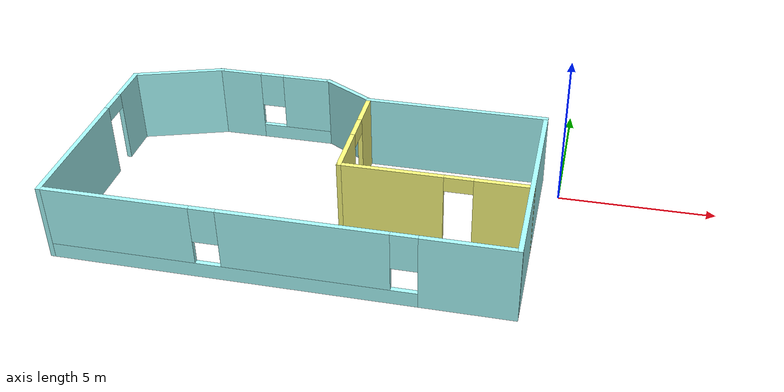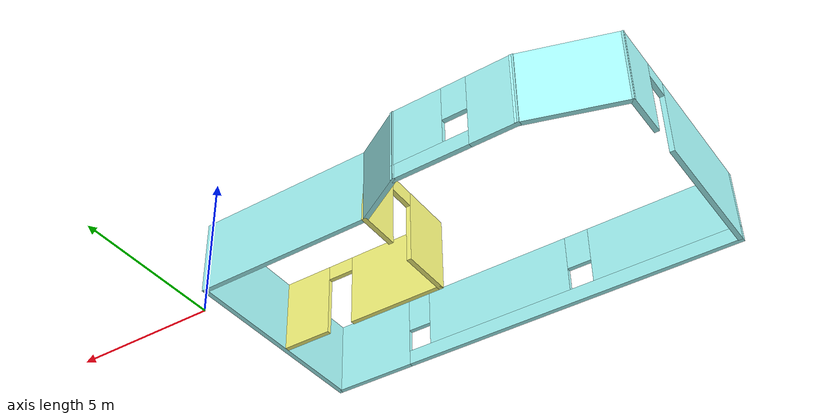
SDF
<?xml version='1.0'?>
<sdf version='1.6'>
  <model name='building'>
    <pose frame=''>-7.72942 -2.19141 0 0 -0 0</pose>
    <link name='Wall_0'>
      <pose frame=''>-2.31727 3.87377 0 0 -0 0</pose>
      <visual name='Wall_0_Visual_0'>
        <pose frame=''>-1.24884 0 1.25 0 -0 0</pose>
        <geometry>
          <box>
            <size>1.50232 0.15 2.5</size>
          </box>
        </geometry>
        <material>
          <script>
            <uri>file://media/materials/scripts/gazebo.material</uri>
            <name>Gazebo/Grey</name>
          </script>
          <ambient>0.666667 1 1 1</ambient>
        </material>
        <meta>
          <layer>0</layer>
        </meta>
      </visual>
      <collision name='Wall_0_Collision_0'>
        <geometry>
          <box>
            <size>1.50232 0.15 2.5</size>
          </box>
        </geometry>
        <pose frame=''>-1.24884 0 1.25 0 -0 0</pose>
      </collision>
      <visual name='Wall_0_Visual_1'>
        <pose frame=''>0.751159 0 0.25 0 -0 0</pose>
        <geometry>
          <box>
            <size>2.49768 0.15 0.5</size>
          </box>
        </geometry>
        <material>
          <script>
            <uri>file://media/materials/scripts/gazebo.material</uri>
            <name>Gazebo/Grey</name>
          </script>
          <ambient>0.666667 1 1 1</ambient>
        </material>
        <meta>
          <layer>0</layer>
        </meta>
      </visual>
      <collision name='Wall_0_Collision_1'>
        <geometry>
          <box>
            <size>2.49768 0.15 0.5</size>
          </box>
        </geometry>
        <pose frame=''>0.751159 0 0.25 0 -0 0</pose>
      </collision>
      <visual name='Wall_0_Visual_2'>
        <pose frame=''>1.15116 0 1.5 0 -0 0</pose>
        <geometry>
          <box>
            <size>1.69768 0.15 2</size>
          </box>
        </geometry>
        <material>
          <script>
            <uri>file://media/materials/scripts/gazebo.material</uri>
            <name>Gazebo/Grey</name>
          </script>
          <ambient>0.666667 1 1 1</ambient>
        </material>
        <meta>
          <layer>0</layer>
        </meta>
      </visual>
      <collision name='Wall_0_Collision_2'>
        <geometry>
          <box>
            <size>1.69768 0.15 2</size>
          </box>
        </geometry>
        <pose frame=''>1.15116 0 1.5 0 -0 0</pose>
      </collision>
      <visual name='Wall_0_Visual_3'>
        <pose frame=''>-0.097682 0 1.9 0 -0 0</pose>
        <geometry>
          <box>
            <size>0.8 0.15 1.2</size>
          </box>
        </geometry>
        <material>
          <script>
            <uri>file://media/materials/scripts/gazebo.material</uri>
            <name>Gazebo/Grey</name>
          </script>
          <ambient>0.666667 1 1 1</ambient>
        </material>
        <meta>
          <layer>0</layer>
        </meta>
      </visual>
      <collision name='Wall_0_Collision_3'>
        <geometry>
          <box>
            <size>0.8 0.15 1.2</size>
          </box>
        </geometry>
        <pose frame=''>-0.097682 0 1.9 0 -0 0</pose>
      </collision>
    </link>
    <link name='Wall_1'>
      <collision name='Wall_1_Collision'>
        <geometry>
          <box>
            <size>2 0.15 2.5</size>
          </box>
        </geometry>
        <pose frame=''>0 0 1.25 0 -0 0</pose>
      </collision>
      <visual name='Wall_1_Visual'>
        <pose frame=''>0 0 1.25 0 -0 0</pose>
        <geometry>
          <box>
            <size>2 0.15 2.5</size>
          </box>
        </geometry>
        <material>
          <script>
            <uri>file://media/materials/scripts/gazebo.material</uri>
            <name>Gazebo/Grey</name>
          </script>
          <ambient>0.666667 1 1 1</ambient>
        </material>
        <meta>
          <layer>0</layer>
        </meta>
      </visual>
      <pose frame=''>0.408802 3.41127 0 0 0 -0.523599</pose>
    </link>
    <link name='Wall_2'>
      <collision name='Wall_2_Collision'>
        <geometry>
          <box>
            <size>6 0.15 2.5</size>
          </box>
        </geometry>
        <pose frame=''>0 0 1.25 0 -0 0</pose>
      </collision>
      <visual name='Wall_2_Visual'>
        <pose frame=''>0 0 1.25 0 -0 0</pose>
        <geometry>
          <box>
            <size>6 0.15 2.5</size>
          </box>
        </geometry>
        <material>
          <script>
            <uri>file://media/materials/scripts/gazebo.material</uri>
            <name>Gazebo/Grey</name>
          </script>
          <ambient>0.666667 1 1 1</ambient>
        </material>
        <meta>
          <layer>0</layer>
        </meta>
      </visual>
      <pose frame=''>4.13488 2.94877 0 0 -0 0</pose>
    </link>
    <link name='Wall_3'>
      <collision name='Wall_3_Collision'>
        <geometry>
          <box>
            <size>7 0.15 2.5</size>
          </box>
        </geometry>
        <pose frame=''>0 0 1.25 0 -0 0</pose>
      </collision>
      <visual name='Wall_3_Visual'>
        <pose frame=''>0 0 1.25 0 -0 0</pose>
        <geometry>
          <box>
            <size>7 0.15 2.5</size>
          </box>
        </geometry>
        <material>
          <script>
            <uri>file://media/materials/scripts/gazebo.material</uri>
            <name>Gazebo/Grey</name>
          </script>
          <ambient>0.666667 1 1 1</ambient>
        </material>
        <meta>
          <layer>0</layer>
        </meta>
      </visual>
      <pose frame=''>7.05987 -0.476226 0 0 0 -1.5708</pose>
    </link>
    <link name='Wall_4'>
      <pose frame=''>0.009875 -3.90123 0 0 -0 3.14159</pose>
      <visual name='Wall_4_Visual_0'>
        <pose frame=''>-5.68428 0 1.25 0 -0 0</pose>
        <geometry>
          <box>
            <size>2.88143 0.15 2.5</size>
          </box>
        </geometry>
        <material>
          <script>
            <uri>file://media/materials/scripts/gazebo.material</uri>
            <name>Gazebo/Grey</name>
          </script>
          <ambient>0.666667 1 1 1</ambient>
        </material>
        <meta>
          <layer>0</layer>
        </meta>
      </visual>
      <collision name='Wall_4_Collision_0'>
        <geometry>
          <box>
            <size>2.88143 0.15 2.5</size>
          </box>
        </geometry>
        <pose frame=''>-5.68428 0 1.25 0 -0 0</pose>
      </collision>
      <visual name='Wall_4_Visual_1'>
        <pose frame=''>1.44072 0 0.25 0 -0 0</pose>
        <geometry>
          <box>
            <size>11.3686 0.15 0.5</size>
          </box>
        </geometry>
        <material>
          <script>
            <uri>file://media/materials/scripts/gazebo.material</uri>
            <name>Gazebo/Grey</name>
          </script>
          <ambient>0.666667 1 1 1</ambient>
        </material>
        <meta>
          <layer>0</layer>
        </meta>
      </visual>
      <collision name='Wall_4_Collision_1'>
        <geometry>
          <box>
            <size>11.3686 0.15 0.5</size>
          </box>
        </geometry>
        <pose frame=''>1.44072 0 0.25 0 -0 0</pose>
      </collision>
      <visual name='Wall_4_Visual_2'>
        <pose frame=''>-0.905979 0 1.5 0 -0 0</pose>
        <geometry>
          <box>
            <size>5.07517 0.15 2</size>
          </box>
        </geometry>
        <material>
          <script>
            <uri>file://media/materials/scripts/gazebo.material</uri>
            <name>Gazebo/Grey</name>
          </script>
          <ambient>0.666667 1 1 1</ambient>
        </material>
        <meta>
          <layer>0</layer>
        </meta>
      </visual>
      <collision name='Wall_4_Collision_2'>
        <geometry>
          <box>
            <size>5.07517 0.15 2</size>
          </box>
        </geometry>
        <pose frame=''>-0.905979 0 1.5 0 -0 0</pose>
      </collision>
      <visual name='Wall_4_Visual_3'>
        <pose frame=''>4.7783 0 1.5 0 -0 0</pose>
        <geometry>
          <box>
            <size>4.69339 0.15 2</size>
          </box>
        </geometry>
        <material>
          <script>
            <uri>file://media/materials/scripts/gazebo.material</uri>
            <name>Gazebo/Grey</name>
          </script>
          <ambient>0.666667 1 1 1</ambient>
        </material>
        <meta>
          <layer>0</layer>
        </meta>
      </visual>
      <collision name='Wall_4_Collision_3'>
        <geometry>
          <box>
            <size>4.69339 0.15 2</size>
          </box>
        </geometry>
        <pose frame=''>4.7783 0 1.5 0 -0 0</pose>
      </collision>
      <visual name='Wall_4_Visual_4'>
        <pose frame=''>-3.84357 0 1.9 0 -0 0</pose>
        <geometry>
          <box>
            <size>0.8 0.15 1.2</size>
          </box>
        </geometry>
        <material>
          <script>
            <uri>file://media/materials/scripts/gazebo.material</uri>
            <name>Gazebo/Grey</name>
          </script>
          <ambient>0.666667 1 1 1</ambient>
        </material>
        <meta>
          <layer>0</layer>
        </meta>
      </visual>
      <collision name='Wall_4_Collision_4'>
        <geometry>
          <box>
            <size>0.8 0.15 1.2</size>
          </box>
        </geometry>
        <pose frame=''>-3.84357 0 1.9 0 -0 0</pose>
      </collision>
      <visual name='Wall_4_Visual_5'>
        <pose frame=''>2.03161 0 1.9 0 -0 0</pose>
        <geometry>
          <box>
            <size>0.8 0.15 1.2</size>
          </box>
        </geometry>
        <material>
          <script>
            <uri>file://media/materials/scripts/gazebo.material</uri>
            <name>Gazebo/Grey</name>
          </script>
          <ambient>0.666667 1 1 1</ambient>
        </material>
        <meta>
          <layer>0</layer>
        </meta>
      </visual>
      <collision name='Wall_4_Collision_5'>
        <geometry>
          <box>
            <size>0.8 0.15 1.2</size>
          </box>
        </geometry>
        <pose frame=''>2.03161 0 1.9 0 -0 0</pose>
      </collision>
    </link>
    <link name='Wall_5'>
      <pose frame=''>-7.04012 -0.476226 0 0 -0 1.5708</pose>
      <visual name='Wall_5_Visual_0'>
        <pose frame=''>-1.17627 0 1.25 0 -0 0</pose>
        <geometry>
          <box>
            <size>4.64746 0.15 2.5</size>
          </box>
        </geometry>
        <material>
          <script>
            <uri>file://media/materials/scripts/gazebo.material</uri>
            <name>Gazebo/Grey</name>
          </script>
          <ambient>0.666667 1 1 1</ambient>
        </material>
        <meta>
          <layer>0</layer>
        </meta>
      </visual>
      <collision name='Wall_5_Collision_0'>
        <geometry>
          <box>
            <size>4.64746 0.15 2.5</size>
          </box>
        </geometry>
        <pose frame=''>-1.17627 0 1.25 0 -0 0</pose>
      </collision>
      <visual name='Wall_5_Visual_1'>
        <pose frame=''>2.77373 0 1.25 0 -0 0</pose>
        <geometry>
          <box>
            <size>1.45254 0.15 2.5</size>
          </box>
        </geometry>
        <material>
          <script>
            <uri>file://media/materials/scripts/gazebo.material</uri>
            <name>Gazebo/Grey</name>
          </script>
          <ambient>0.666667 1 1 1</ambient>
        </material>
        <meta>
          <layer>0</layer>
        </meta>
      </visual>
      <collision name='Wall_5_Collision_1'>
        <geometry>
          <box>
            <size>1.45254 0.15 2.5</size>
          </box>
        </geometry>
        <pose frame=''>2.77373 0 1.25 0 -0 0</pose>
      </collision>
      <visual name='Wall_5_Visual_2'>
        <pose frame=''>1.59746 0 2.25 0 -0 0</pose>
        <geometry>
          <box>
            <size>0.9 0.15 0.5</size>
          </box>
        </geometry>
        <material>
          <script>
            <uri>file://media/materials/scripts/gazebo.material</uri>
            <name>Gazebo/Grey</name>
          </script>
          <ambient>0.666667 1 1 1</ambient>
        </material>
        <meta>
          <layer>0</layer>
        </meta>
      </visual>
      <collision name='Wall_5_Collision_2'>
        <geometry>
          <box>
            <size>0.9 0.15 0.5</size>
          </box>
        </geometry>
        <pose frame=''>1.59746 0 2.25 0 -0 0</pose>
      </collision>
    </link>
    <link name='Wall_6'>
      <collision name='Wall_6_Collision'>
        <geometry>
          <box>
            <size>3.0968 0.15 2.5</size>
          </box>
        </geometry>
        <pose frame=''>0 0 1.25 0 -0 0</pose>
      </collision>
      <visual name='Wall_6_Visual'>
        <pose frame=''>0 0 1.25 0 -0 0</pose>
        <geometry>
          <box>
            <size>3.0968 0.15 2.5</size>
          </box>
        </geometry>
        <material>
          <script>
            <uri>file://media/materials/scripts/gazebo.material</uri>
            <name>Gazebo/Grey</name>
          </script>
          <ambient>0.666667 1 1 1</ambient>
        </material>
        <meta>
          <layer>0</layer>
        </meta>
      </visual>
      <pose frame=''>-5.6412 3.41127 0 0 -0 0.319298</pose>
    </link>
    <link name='Wall_8'>
      <pose frame=''>1.20988 1.02377 0 0 0 -1.5708</pose>
      <visual name='Wall_8_Visual_0'>
        <pose frame=''>-1.31999 0 1.25 0 -0 0</pose>
        <geometry>
          <box>
            <size>1.36002 0.15 2.5</size>
          </box>
        </geometry>
        <material>
          <script>
            <uri>file://media/materials/scripts/gazebo.material</uri>
            <name>Gazebo/Grey</name>
          </script>
          <ambient>1 1 0.498039 1</ambient>
        </material>
        <meta>
          <layer>0</layer>
        </meta>
      </visual>
      <collision name='Wall_8_Collision_0'>
        <geometry>
          <box>
            <size>1.36002 0.15 2.5</size>
          </box>
        </geometry>
        <pose frame=''>-1.31999 0 1.25 0 -0 0</pose>
      </collision>
      <visual name='Wall_8_Visual_1'>
        <pose frame=''>1.13001 0 1.25 0 -0 0</pose>
        <geometry>
          <box>
            <size>1.73998 0.15 2.5</size>
          </box>
        </geometry>
        <material>
          <script>
            <uri>file://media/materials/scripts/gazebo.material</uri>
            <name>Gazebo/Grey</name>
          </script>
          <ambient>1 1 0.498039 1</ambient>
        </material>
        <meta>
          <layer>0</layer>
        </meta>
      </visual>
      <collision name='Wall_8_Collision_1'>
        <geometry>
          <box>
            <size>1.73998 0.15 2.5</size>
          </box>
        </geometry>
        <pose frame=''>1.13001 0 1.25 0 -0 0</pose>
      </collision>
      <visual name='Wall_8_Visual_2'>
        <pose frame=''>-0.18998 0 2.25 0 -0 0</pose>
        <geometry>
          <box>
            <size>0.9 0.15 0.5</size>
          </box>
        </geometry>
        <material>
          <script>
            <uri>file://media/materials/scripts/gazebo.material</uri>
            <name>Gazebo/Grey</name>
          </script>
          <ambient>1 1 0.498039 1</ambient>
        </material>
        <meta>
          <layer>0</layer>
        </meta>
      </visual>
      <collision name='Wall_8_Collision_2'>
        <geometry>
          <box>
            <size>0.9 0.15 0.5</size>
          </box>
        </geometry>
        <pose frame=''>-0.18998 0 2.25 0 -0 0</pose>
      </collision>
    </link>
    <link name='Wall_9'>
      <pose frame=''>4.13488 -0.901226 0 0 -0 0</pose>
      <visual name='Wall_9_Visual_0'>
        <pose frame=''>-1.35684 0 1.25 0 -0 0</pose>
        <geometry>
          <box>
            <size>3.28631 0.15 2.5</size>
          </box>
        </geometry>
        <material>
          <script>
            <uri>file://media/materials/scripts/gazebo.material</uri>
            <name>Gazebo/Grey</name>
          </script>
          <ambient>1 1 0.498039 1</ambient>
        </material>
        <meta>
          <layer>0</layer>
        </meta>
      </visual>
      <collision name='Wall_9_Collision_0'>
        <geometry>
          <box>
            <size>3.28631 0.15 2.5</size>
          </box>
        </geometry>
        <pose frame=''>-1.35684 0 1.25 0 -0 0</pose>
      </collision>
      <visual name='Wall_9_Visual_1'>
        <pose frame=''>2.09316 0 1.25 0 -0 0</pose>
        <geometry>
          <box>
            <size>1.81369 0.15 2.5</size>
          </box>
        </geometry>
        <material>
          <script>
            <uri>file://media/materials/scripts/gazebo.material</uri>
            <name>Gazebo/Grey</name>
          </script>
          <ambient>1 1 0.498039 1</ambient>
        </material>
        <meta>
          <layer>0</layer>
        </meta>
      </visual>
      <collision name='Wall_9_Collision_1'>
        <geometry>
          <box>
            <size>1.81369 0.15 2.5</size>
          </box>
        </geometry>
        <pose frame=''>2.09316 0 1.25 0 -0 0</pose>
      </collision>
      <visual name='Wall_9_Visual_2'>
        <pose frame=''>0.736312 0 2.25 0 -0 0</pose>
        <geometry>
          <box>
            <size>0.9 0.15 0.5</size>
          </box>
        </geometry>
        <material>
          <script>
            <uri>file://media/materials/scripts/gazebo.material</uri>
            <name>Gazebo/Grey</name>
          </script>
          <ambient>1 1 0.498039 1</ambient>
        </material>
        <meta>
          <layer>0</layer>
        </meta>
      </visual>
      <collision name='Wall_9_Collision_2'>
        <geometry>
          <box>
            <size>0.9 0.15 0.5</size>
          </box>
        </geometry>
        <pose frame=''>0.736312 0 2.25 0 -0 0</pose>
      </collision>
    </link>
    <static>1</static>
  </model>
</sdf>
